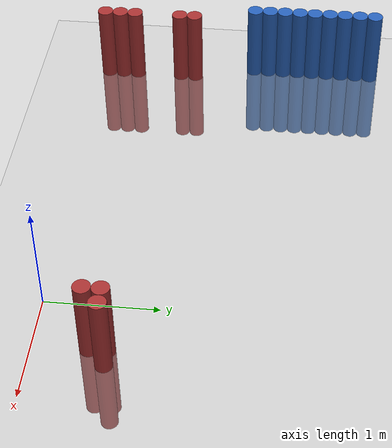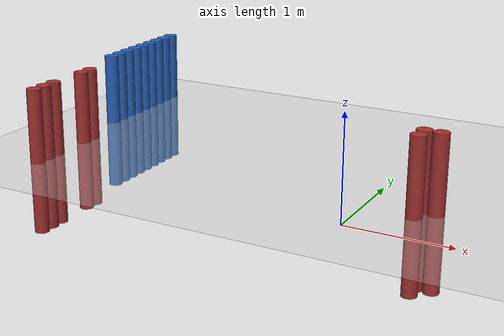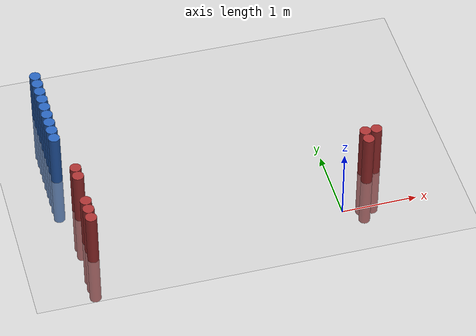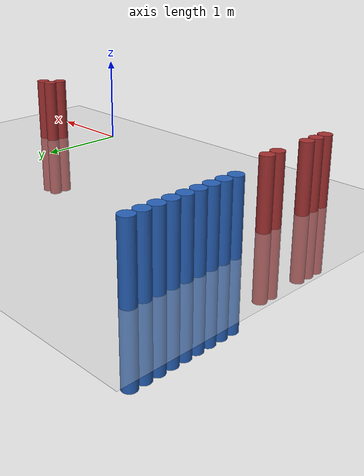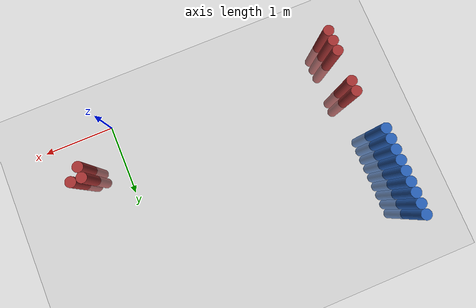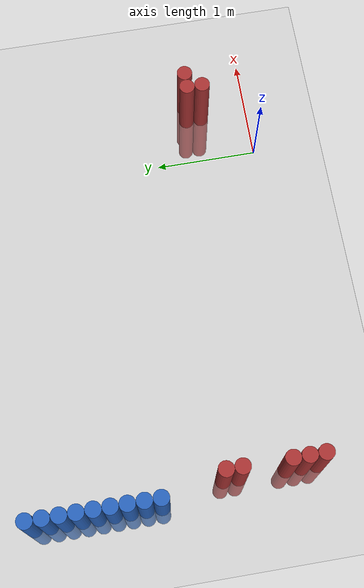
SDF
<sdf version="1.6">
 <world name="default">
  <model name="ground_plane">
   <static>1</static>
   <link name="link">
    <collision name="collision">
     <geometry><plane><normal>0 0 1</normal><size>100 100</size></plane></geometry>
     <surface><friction><ode><mu>100</mu><mu2>50</mu2></ode></friction></surface>
    </collision>
    <visual name="visual">
     <cast_shadows>0</cast_shadows>
     <geometry><plane><normal>0 0 1</normal><size>100 100</size></plane></geometry>
     <material>
      <script><uri>file://media/materials/scripts/gazebo.material</uri><name>Gazebo/Grey</name></script>
     </material>
    </visual>
   </link>
  </model>
  <model name="unit_cylinder_137">
   <static>1</static>
   <pose>-3.425000 1.675000 0.000000 0.000000 0.000000 0.000000</pose>
   <link name="link">
    <inertial>
     <mass>1</mass>
     <inertia><ixx>0.145833</ixx><ixy>0</ixy><ixz>0</ixz><iyy>0.145833</iyy><iyz>0</iyz><izz>0.125</izz></inertia>
    </inertial>
    <collision name="collision">
     <geometry><cylinder><radius>0.075000</radius><length>1.5</length></cylinder></geometry>
    </collision>
    <visual name="visual">
     <geometry><cylinder><radius>0.075000</radius><length>1.5</length></cylinder></geometry>
     <material>
      <ambient>0.152000 0.379000 0.720000 1</ambient>
      <diffuse>0.152000 0.379000 0.720000 1</diffuse>
     </material>
     <material>
      <script><name>Gazebo/Grey</name><uri>file://media/materials/scripts/gazebo.material</uri></script>
     </material>
    </visual>
   </link>
  </model>
  <model name="unit_cylinder_139">
   <static>1</static>
   <pose>-3.425000 1.825000 0.000000 0.000000 0.000000 0.000000</pose>
   <link name="link">
    <inertial>
     <mass>1</mass>
     <inertia><ixx>0.145833</ixx><ixy>0</ixy><ixz>0</ixz><iyy>0.145833</iyy><iyz>0</iyz><izz>0.125</izz></inertia>
    </inertial>
    <collision name="collision">
     <geometry><cylinder><radius>0.075000</radius><length>1.5</length></cylinder></geometry>
    </collision>
    <visual name="visual">
     <geometry><cylinder><radius>0.075000</radius><length>1.5</length></cylinder></geometry>
     <material>
      <ambient>0.152000 0.379000 0.720000 1</ambient>
      <diffuse>0.152000 0.379000 0.720000 1</diffuse>
     </material>
     <material>
      <script><name>Gazebo/Grey</name><uri>file://media/materials/scripts/gazebo.material</uri></script>
     </material>
    </visual>
   </link>
  </model>
  <model name="unit_cylinder_141">
   <static>1</static>
   <pose>-3.425000 1.975000 0.000000 0.000000 0.000000 0.000000</pose>
   <link name="link">
    <inertial>
     <mass>1</mass>
     <inertia><ixx>0.145833</ixx><ixy>0</ixy><ixz>0</ixz><iyy>0.145833</iyy><iyz>0</iyz><izz>0.125</izz></inertia>
    </inertial>
    <collision name="collision">
     <geometry><cylinder><radius>0.075000</radius><length>1.5</length></cylinder></geometry>
    </collision>
    <visual name="visual">
     <geometry><cylinder><radius>0.075000</radius><length>1.5</length></cylinder></geometry>
     <material>
      <ambient>0.152000 0.379000 0.720000 1</ambient>
      <diffuse>0.152000 0.379000 0.720000 1</diffuse>
     </material>
     <material>
      <script><name>Gazebo/Grey</name><uri>file://media/materials/scripts/gazebo.material</uri></script>
     </material>
    </visual>
   </link>
  </model>
  <model name="unit_cylinder_143">
   <static>1</static>
   <pose>-3.425000 2.125000 0.000000 0.000000 0.000000 0.000000</pose>
   <link name="link">
    <inertial>
     <mass>1</mass>
     <inertia><ixx>0.145833</ixx><ixy>0</ixy><ixz>0</ixz><iyy>0.145833</iyy><iyz>0</iyz><izz>0.125</izz></inertia>
    </inertial>
    <collision name="collision">
     <geometry><cylinder><radius>0.075000</radius><length>1.5</length></cylinder></geometry>
    </collision>
    <visual name="visual">
     <geometry><cylinder><radius>0.075000</radius><length>1.5</length></cylinder></geometry>
     <material>
      <ambient>0.152000 0.379000 0.720000 1</ambient>
      <diffuse>0.152000 0.379000 0.720000 1</diffuse>
     </material>
     <material>
      <script><name>Gazebo/Grey</name><uri>file://media/materials/scripts/gazebo.material</uri></script>
     </material>
    </visual>
   </link>
  </model>
  <model name="unit_cylinder_145">
   <static>1</static>
   <pose>-3.425000 2.275000 0.000000 0.000000 0.000000 0.000000</pose>
   <link name="link">
    <inertial>
     <mass>1</mass>
     <inertia><ixx>0.145833</ixx><ixy>0</ixy><ixz>0</ixz><iyy>0.145833</iyy><iyz>0</iyz><izz>0.125</izz></inertia>
    </inertial>
    <collision name="collision">
     <geometry><cylinder><radius>0.075000</radius><length>1.5</length></cylinder></geometry>
    </collision>
    <visual name="visual">
     <geometry><cylinder><radius>0.075000</radius><length>1.5</length></cylinder></geometry>
     <material>
      <ambient>0.152000 0.379000 0.720000 1</ambient>
      <diffuse>0.152000 0.379000 0.720000 1</diffuse>
     </material>
     <material>
      <script><name>Gazebo/Grey</name><uri>file://media/materials/scripts/gazebo.material</uri></script>
     </material>
    </visual>
   </link>
  </model>
  <model name="unit_cylinder_147">
   <static>1</static>
   <pose>-3.425000 2.425000 0.000000 0.000000 0.000000 0.000000</pose>
   <link name="link">
    <inertial>
     <mass>1</mass>
     <inertia><ixx>0.145833</ixx><ixy>0</ixy><ixz>0</ixz><iyy>0.145833</iyy><iyz>0</iyz><izz>0.125</izz></inertia>
    </inertial>
    <collision name="collision">
     <geometry><cylinder><radius>0.075000</radius><length>1.5</length></cylinder></geometry>
    </collision>
    <visual name="visual">
     <geometry><cylinder><radius>0.075000</radius><length>1.5</length></cylinder></geometry>
     <material>
      <ambient>0.152000 0.379000 0.720000 1</ambient>
      <diffuse>0.152000 0.379000 0.720000 1</diffuse>
     </material>
     <material>
      <script><name>Gazebo/Grey</name><uri>file://media/materials/scripts/gazebo.material</uri></script>
     </material>
    </visual>
   </link>
  </model>
  <model name="unit_cylinder_149">
   <static>1</static>
   <pose>-3.425000 2.575000 0.000000 0.000000 0.000000 0.000000</pose>
   <link name="link">
    <inertial>
     <mass>1</mass>
     <inertia><ixx>0.145833</ixx><ixy>0</ixy><ixz>0</ixz><iyy>0.145833</iyy><iyz>0</iyz><izz>0.125</izz></inertia>
    </inertial>
    <collision name="collision">
     <geometry><cylinder><radius>0.075000</radius><length>1.5</length></cylinder></geometry>
    </collision>
    <visual name="visual">
     <geometry><cylinder><radius>0.075000</radius><length>1.5</length></cylinder></geometry>
     <material>
      <ambient>0.152000 0.379000 0.720000 1</ambient>
      <diffuse>0.152000 0.379000 0.720000 1</diffuse>
     </material>
     <material>
      <script><name>Gazebo/Grey</name><uri>file://media/materials/scripts/gazebo.material</uri></script>
     </material>
    </visual>
   </link>
  </model>
  <model name="unit_cylinder_151">
   <static>1</static>
   <pose>-3.425000 2.725000 0.000000 0.000000 0.000000 0.000000</pose>
   <link name="link">
    <inertial>
     <mass>1</mass>
     <inertia><ixx>0.145833</ixx><ixy>0</ixy><ixz>0</ixz><iyy>0.145833</iyy><iyz>0</iyz><izz>0.125</izz></inertia>
    </inertial>
    <collision name="collision">
     <geometry><cylinder><radius>0.075000</radius><length>1.5</length></cylinder></geometry>
    </collision>
    <visual name="visual">
     <geometry><cylinder><radius>0.075000</radius><length>1.5</length></cylinder></geometry>
     <material>
      <ambient>0.152000 0.379000 0.720000 1</ambient>
      <diffuse>0.152000 0.379000 0.720000 1</diffuse>
     </material>
     <material>
      <script><name>Gazebo/Grey</name><uri>file://media/materials/scripts/gazebo.material</uri></script>
     </material>
    </visual>
   </link>
  </model>
  <model name="unit_cylinder_231">
   <static>1</static>
   <pose>-3.425000 1.525000 0.000000 0.000000 0.000000 0.000000</pose>
   <link name="link">
    <inertial>
     <mass>1</mass>
     <inertia><ixx>0.145833</ixx><ixy>0</ixy><ixz>0</ixz><iyy>0.145833</iyy><iyz>0</iyz><izz>0.125</izz></inertia>
    </inertial>
    <collision name="collision">
     <geometry><cylinder><radius>0.075000</radius><length>1.5</length></cylinder></geometry>
    </collision>
    <visual name="visual">
     <geometry><cylinder><radius>0.075000</radius><length>1.5</length></cylinder></geometry>
     <material>
      <ambient>0.152000 0.379000 0.720000 1</ambient>
      <diffuse>0.152000 0.379000 0.720000 1</diffuse>
     </material>
     <material>
      <script><name>Gazebo/Grey</name><uri>file://media/materials/scripts/gazebo.material</uri></script>
     </material>
    </visual>
   </link>
  </model>
  <model name="unit_cylinder_232">
   <static>1</static>
   <pose>-3.425000 1.675000 0.000000 0.000000 0.000000 0.000000</pose>
   <link name="link">
    <inertial>
     <mass>1</mass>
     <inertia><ixx>0.145833</ixx><ixy>0</ixy><ixz>0</ixz><iyy>0.145833</iyy><iyz>0</iyz><izz>0.125</izz></inertia>
    </inertial>
    <collision name="collision">
     <geometry><cylinder><radius>0.075000</radius><length>1.5</length></cylinder></geometry>
    </collision>
    <visual name="visual">
     <geometry><cylinder><radius>0.075000</radius><length>1.5</length></cylinder></geometry>
     <material>
      <ambient>0.152000 0.379000 0.720000 1</ambient>
      <diffuse>0.152000 0.379000 0.720000 1</diffuse>
     </material>
     <material>
      <script><name>Gazebo/Grey</name><uri>file://media/materials/scripts/gazebo.material</uri></script>
     </material>
    </visual>
   </link>
  </model>
  <model name="unit_cylinder_233">
   <static>1</static>
   <pose>-3.425000 1.825000 0.000000 0.000000 0.000000 0.000000</pose>
   <link name="link">
    <inertial>
     <mass>1</mass>
     <inertia><ixx>0.145833</ixx><ixy>0</ixy><ixz>0</ixz><iyy>0.145833</iyy><iyz>0</iyz><izz>0.125</izz></inertia>
    </inertial>
    <collision name="collision">
     <geometry><cylinder><radius>0.075000</radius><length>1.5</length></cylinder></geometry>
    </collision>
    <visual name="visual">
     <geometry><cylinder><radius>0.075000</radius><length>1.5</length></cylinder></geometry>
     <material>
      <ambient>0.152000 0.379000 0.720000 1</ambient>
      <diffuse>0.152000 0.379000 0.720000 1</diffuse>
     </material>
     <material>
      <script><name>Gazebo/Grey</name><uri>file://media/materials/scripts/gazebo.material</uri></script>
     </material>
    </visual>
   </link>
  </model>
  <model name="unit_cylinder_234">
   <static>1</static>
   <pose>-3.425000 1.975000 0.000000 0.000000 0.000000 0.000000</pose>
   <link name="link">
    <inertial>
     <mass>1</mass>
     <inertia><ixx>0.145833</ixx><ixy>0</ixy><ixz>0</ixz><iyy>0.145833</iyy><iyz>0</iyz><izz>0.125</izz></inertia>
    </inertial>
    <collision name="collision">
     <geometry><cylinder><radius>0.075000</radius><length>1.5</length></cylinder></geometry>
    </collision>
    <visual name="visual">
     <geometry><cylinder><radius>0.075000</radius><length>1.5</length></cylinder></geometry>
     <material>
      <ambient>0.152000 0.379000 0.720000 1</ambient>
      <diffuse>0.152000 0.379000 0.720000 1</diffuse>
     </material>
     <material>
      <script><name>Gazebo/Grey</name><uri>file://media/materials/scripts/gazebo.material</uri></script>
     </material>
    </visual>
   </link>
  </model>
  <model name="unit_cylinder_235">
   <static>1</static>
   <pose>-3.425000 2.125000 0.000000 0.000000 0.000000 0.000000</pose>
   <link name="link">
    <inertial>
     <mass>1</mass>
     <inertia><ixx>0.145833</ixx><ixy>0</ixy><ixz>0</ixz><iyy>0.145833</iyy><iyz>0</iyz><izz>0.125</izz></inertia>
    </inertial>
    <collision name="collision">
     <geometry><cylinder><radius>0.075000</radius><length>1.5</length></cylinder></geometry>
    </collision>
    <visual name="visual">
     <geometry><cylinder><radius>0.075000</radius><length>1.5</length></cylinder></geometry>
     <material>
      <ambient>0.152000 0.379000 0.720000 1</ambient>
      <diffuse>0.152000 0.379000 0.720000 1</diffuse>
     </material>
     <material>
      <script><name>Gazebo/Grey</name><uri>file://media/materials/scripts/gazebo.material</uri></script>
     </material>
    </visual>
   </link>
  </model>
  <model name="unit_cylinder_236">
   <static>1</static>
   <pose>-3.425000 2.275000 0.000000 0.000000 0.000000 0.000000</pose>
   <link name="link">
    <inertial>
     <mass>1</mass>
     <inertia><ixx>0.145833</ixx><ixy>0</ixy><ixz>0</ixz><iyy>0.145833</iyy><iyz>0</iyz><izz>0.125</izz></inertia>
    </inertial>
    <collision name="collision">
     <geometry><cylinder><radius>0.075000</radius><length>1.5</length></cylinder></geometry>
    </collision>
    <visual name="visual">
     <geometry><cylinder><radius>0.075000</radius><length>1.5</length></cylinder></geometry>
     <material>
      <ambient>0.152000 0.379000 0.720000 1</ambient>
      <diffuse>0.152000 0.379000 0.720000 1</diffuse>
     </material>
     <material>
      <script><name>Gazebo/Grey</name><uri>file://media/materials/scripts/gazebo.material</uri></script>
     </material>
    </visual>
   </link>
  </model>
  <model name="unit_cylinder_237">
   <static>1</static>
   <pose>-3.425000 2.425000 0.000000 0.000000 0.000000 0.000000</pose>
   <link name="link">
    <inertial>
     <mass>1</mass>
     <inertia><ixx>0.145833</ixx><ixy>0</ixy><ixz>0</ixz><iyy>0.145833</iyy><iyz>0</iyz><izz>0.125</izz></inertia>
    </inertial>
    <collision name="collision">
     <geometry><cylinder><radius>0.075000</radius><length>1.5</length></cylinder></geometry>
    </collision>
    <visual name="visual">
     <geometry><cylinder><radius>0.075000</radius><length>1.5</length></cylinder></geometry>
     <material>
      <ambient>0.152000 0.379000 0.720000 1</ambient>
      <diffuse>0.152000 0.379000 0.720000 1</diffuse>
     </material>
     <material>
      <script><name>Gazebo/Grey</name><uri>file://media/materials/scripts/gazebo.material</uri></script>
     </material>
    </visual>
   </link>
  </model>
  <model name="unit_cylinder_238">
   <static>1</static>
   <pose>-3.425000 2.575000 0.000000 0.000000 0.000000 0.000000</pose>
   <link name="link">
    <inertial>
     <mass>1</mass>
     <inertia><ixx>0.145833</ixx><ixy>0</ixy><ixz>0</ixz><iyy>0.145833</iyy><iyz>0</iyz><izz>0.125</izz></inertia>
    </inertial>
    <collision name="collision">
     <geometry><cylinder><radius>0.075000</radius><length>1.5</length></cylinder></geometry>
    </collision>
    <visual name="visual">
     <geometry><cylinder><radius>0.075000</radius><length>1.5</length></cylinder></geometry>
     <material>
      <ambient>0.152000 0.379000 0.720000 1</ambient>
      <diffuse>0.152000 0.379000 0.720000 1</diffuse>
     </material>
     <material>
      <script><name>Gazebo/Grey</name><uri>file://media/materials/scripts/gazebo.material</uri></script>
     </material>
    </visual>
   </link>
  </model>
  <model name="unit_cylinder_239">
   <static>1</static>
   <pose>-3.425000 2.725000 0.000000 0.000000 0.000000 0.000000</pose>
   <link name="link">
    <inertial>
     <mass>1</mass>
     <inertia><ixx>0.145833</ixx><ixy>0</ixy><ixz>0</ixz><iyy>0.145833</iyy><iyz>0</iyz><izz>0.125</izz></inertia>
    </inertial>
    <collision name="collision">
     <geometry><cylinder><radius>0.075000</radius><length>1.5</length></cylinder></geometry>
    </collision>
    <visual name="visual">
     <geometry><cylinder><radius>0.075000</radius><length>1.5</length></cylinder></geometry>
     <material>
      <ambient>0.152000 0.379000 0.720000 1</ambient>
      <diffuse>0.152000 0.379000 0.720000 1</diffuse>
     </material>
     <material>
      <script><name>Gazebo/Grey</name><uri>file://media/materials/scripts/gazebo.material</uri></script>
     </material>
    </visual>
   </link>
  </model>
  <model name="unit_cylinder_258">
   <static>1</static>
   <pose>-3.275000 0.025000 0.000000 0.000000 0.000000 0.000000</pose>
   <link name="link">
    <inertial>
     <mass>1</mass>
     <inertia><ixx>0.145833</ixx><ixy>0</ixy><ixz>0</ixz><iyy>0.145833</iyy><iyz>0</iyz><izz>0.125</izz></inertia>
    </inertial>
    <collision name="collision">
     <geometry><cylinder><radius>0.075000</radius><length>1.5</length></cylinder></geometry>
    </collision>
    <visual name="visual">
     <geometry><cylinder><radius>0.075000</radius><length>1.5</length></cylinder></geometry>
     <material>
      <ambient>0.648000 0.192000 0.192000 1</ambient>
      <diffuse>0.648000 0.192000 0.192000 1</diffuse>
     </material>
     <material>
      <script><name>Gazebo/Grey</name><uri>file://media/materials/scripts/gazebo.material</uri></script>
     </material>
    </visual>
   </link>
  </model>
  <model name="unit_cylinder_259">
   <static>1</static>
   <pose>-3.275000 0.175000 0.000000 0.000000 0.000000 0.000000</pose>
   <link name="link">
    <inertial>
     <mass>1</mass>
     <inertia><ixx>0.145833</ixx><ixy>0</ixy><ixz>0</ixz><iyy>0.145833</iyy><iyz>0</iyz><izz>0.125</izz></inertia>
    </inertial>
    <collision name="collision">
     <geometry><cylinder><radius>0.075000</radius><length>1.5</length></cylinder></geometry>
    </collision>
    <visual name="visual">
     <geometry><cylinder><radius>0.075000</radius><length>1.5</length></cylinder></geometry>
     <material>
      <ambient>0.648000 0.192000 0.192000 1</ambient>
      <diffuse>0.648000 0.192000 0.192000 1</diffuse>
     </material>
     <material>
      <script><name>Gazebo/Grey</name><uri>file://media/materials/scripts/gazebo.material</uri></script>
     </material>
    </visual>
   </link>
  </model>
  <model name="unit_cylinder_260">
   <static>1</static>
   <pose>-3.275000 0.325000 0.000000 0.000000 0.000000 0.000000</pose>
   <link name="link">
    <inertial>
     <mass>1</mass>
     <inertia><ixx>0.145833</ixx><ixy>0</ixy><ixz>0</ixz><iyy>0.145833</iyy><iyz>0</iyz><izz>0.125</izz></inertia>
    </inertial>
    <collision name="collision">
     <geometry><cylinder><radius>0.075000</radius><length>1.5</length></cylinder></geometry>
    </collision>
    <visual name="visual">
     <geometry><cylinder><radius>0.075000</radius><length>1.5</length></cylinder></geometry>
     <material>
      <ambient>0.648000 0.192000 0.192000 1</ambient>
      <diffuse>0.648000 0.192000 0.192000 1</diffuse>
     </material>
     <material>
      <script><name>Gazebo/Grey</name><uri>file://media/materials/scripts/gazebo.material</uri></script>
     </material>
    </visual>
   </link>
  </model>
  <model name="unit_cylinder_261">
   <static>1</static>
   <pose>-3.275000 0.775000 0.000000 0.000000 0.000000 0.000000</pose>
   <link name="link">
    <inertial>
     <mass>1</mass>
     <inertia><ixx>0.145833</ixx><ixy>0</ixy><ixz>0</ixz><iyy>0.145833</iyy><iyz>0</iyz><izz>0.125</izz></inertia>
    </inertial>
    <collision name="collision">
     <geometry><cylinder><radius>0.075000</radius><length>1.5</length></cylinder></geometry>
    </collision>
    <visual name="visual">
     <geometry><cylinder><radius>0.075000</radius><length>1.5</length></cylinder></geometry>
     <material>
      <ambient>0.648000 0.192000 0.192000 1</ambient>
      <diffuse>0.648000 0.192000 0.192000 1</diffuse>
     </material>
     <material>
      <script><name>Gazebo/Grey</name><uri>file://media/materials/scripts/gazebo.material</uri></script>
     </material>
    </visual>
   </link>
  </model>
  <model name="unit_cylinder_262">
   <static>1</static>
   <pose>-3.275000 0.925000 0.000000 0.000000 0.000000 0.000000</pose>
   <link name="link">
    <inertial>
     <mass>1</mass>
     <inertia><ixx>0.145833</ixx><ixy>0</ixy><ixz>0</ixz><iyy>0.145833</iyy><iyz>0</iyz><izz>0.125</izz></inertia>
    </inertial>
    <collision name="collision">
     <geometry><cylinder><radius>0.075000</radius><length>1.5</length></cylinder></geometry>
    </collision>
    <visual name="visual">
     <geometry><cylinder><radius>0.075000</radius><length>1.5</length></cylinder></geometry>
     <material>
      <ambient>0.648000 0.192000 0.192000 1</ambient>
      <diffuse>0.648000 0.192000 0.192000 1</diffuse>
     </material>
     <material>
      <script><name>Gazebo/Grey</name><uri>file://media/materials/scripts/gazebo.material</uri></script>
     </material>
    </visual>
   </link>
  </model>
  <model name="unit_cylinder_279">
   <static>1</static>
   <pose>0.475000 0.475000 0.000000 0.000000 0.000000 0.000000</pose>
   <link name="link">
    <inertial>
     <mass>1</mass>
     <inertia><ixx>0.145833</ixx><ixy>0</ixy><ixz>0</ixz><iyy>0.145833</iyy><iyz>0</iyz><izz>0.125</izz></inertia>
    </inertial>
    <collision name="collision">
     <geometry><cylinder><radius>0.075000</radius><length>1.5</length></cylinder></geometry>
    </collision>
    <visual name="visual">
     <geometry><cylinder><radius>0.075000</radius><length>1.5</length></cylinder></geometry>
     <material>
      <ambient>0.648000 0.192000 0.192000 1</ambient>
      <diffuse>0.648000 0.192000 0.192000 1</diffuse>
     </material>
     <material>
      <script><name>Gazebo/Grey</name><uri>file://media/materials/scripts/gazebo.material</uri></script>
     </material>
    </visual>
   </link>
  </model>
  <model name="unit_cylinder_280">
   <static>1</static>
   <pose>0.475000 0.625000 0.000000 0.000000 0.000000 0.000000</pose>
   <link name="link">
    <inertial>
     <mass>1</mass>
     <inertia><ixx>0.145833</ixx><ixy>0</ixy><ixz>0</ixz><iyy>0.145833</iyy><iyz>0</iyz><izz>0.125</izz></inertia>
    </inertial>
    <collision name="collision">
     <geometry><cylinder><radius>0.075000</radius><length>1.5</length></cylinder></geometry>
    </collision>
    <visual name="visual">
     <geometry><cylinder><radius>0.075000</radius><length>1.5</length></cylinder></geometry>
     <material>
      <ambient>0.648000 0.192000 0.192000 1</ambient>
      <diffuse>0.648000 0.192000 0.192000 1</diffuse>
     </material>
     <material>
      <script><name>Gazebo/Grey</name><uri>file://media/materials/scripts/gazebo.material</uri></script>
     </material>
    </visual>
   </link>
  </model>
  <model name="unit_cylinder_281">
   <static>1</static>
   <pose>0.625000 0.625000 0.000000 0.000000 0.000000 0.000000</pose>
   <link name="link">
    <inertial>
     <mass>1</mass>
     <inertia><ixx>0.145833</ixx><ixy>0</ixy><ixz>0</ixz><iyy>0.145833</iyy><iyz>0</iyz><izz>0.125</izz></inertia>
    </inertial>
    <collision name="collision">
     <geometry><cylinder><radius>0.075000</radius><length>1.5</length></cylinder></geometry>
    </collision>
    <visual name="visual">
     <geometry><cylinder><radius>0.075000</radius><length>1.5</length></cylinder></geometry>
     <material>
      <ambient>0.648000 0.192000 0.192000 1</ambient>
      <diffuse>0.648000 0.192000 0.192000 1</diffuse>
     </material>
     <material>
      <script><name>Gazebo/Grey</name><uri>file://media/materials/scripts/gazebo.material</uri></script>
     </material>
    </visual>
   </link>
  </model>
 </world>
</sdf>
